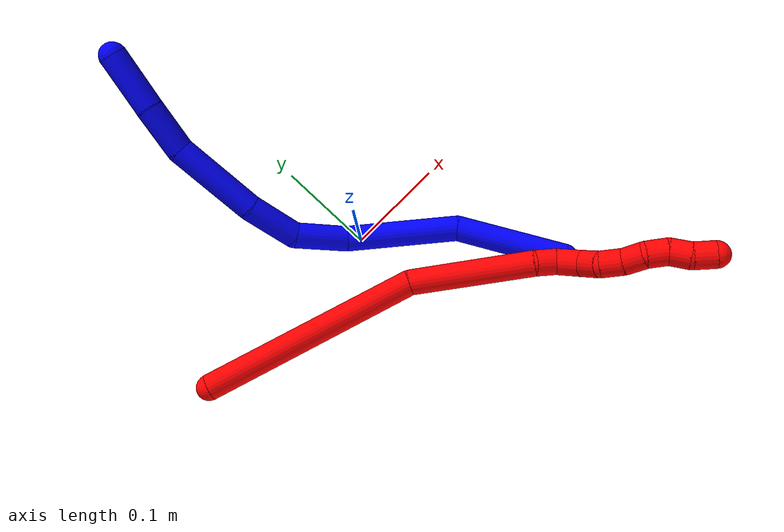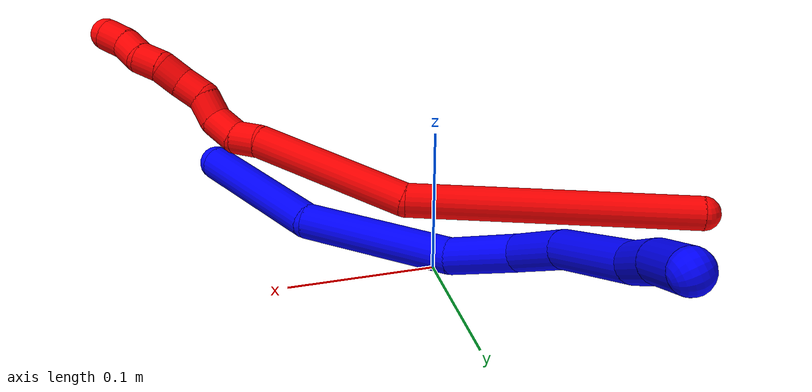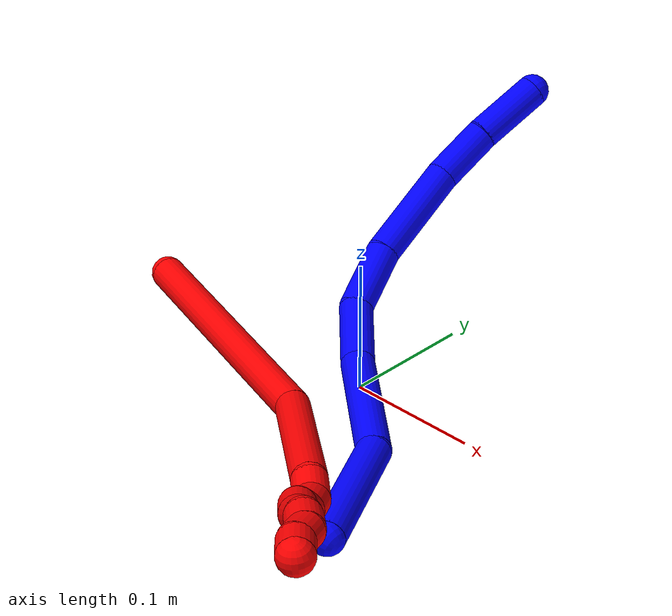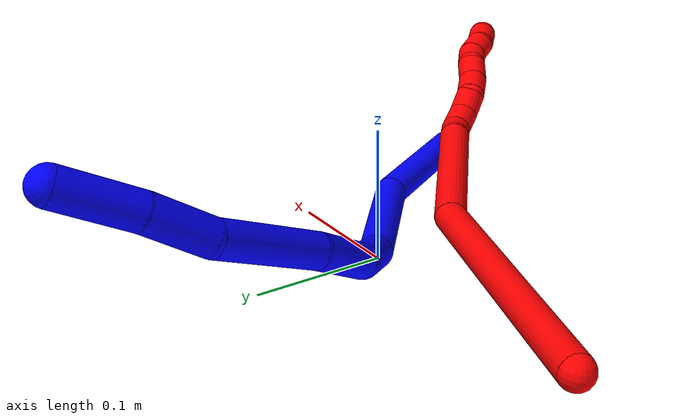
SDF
<sdf version="1.7">
 <world name="default">
  <plugin name="TubeGeneratorPlugin" filename="libtube_generator_plugin.so"/>
  <model name="photoneo_s_sensor">
   <static>1</static>
   <pose>0 0 2 1.57079 1.57079 3.14159</pose>
   <link name="link">
    <inertial><mass>0.1</mass></inertial>
    <sensor name="sensor" type="depth">
     <update_rate>30</update_rate>
     <camera>
      <horizontal_fov>1.22</horizontal_fov>
      <image><width>1920</width><height>1200</height><format>B8G8R8</format></image>
      <clip><near>0.1</near><far>4</far></clip>
      <depth_camera><output>points</output></depth_camera>
     </camera>
     <plugin name="camera_plugin" filename="libgazebo_ros_depth_camera.so">
      <baseline>0.2</baseline>
      <alwaysOn>1</alwaysOn>
      <updateRate>0.0</updateRate>
      <cameraName>camera_ir</cameraName>
      <imageTopicName>/camera/color/image_raw</imageTopicName>
      <cameraInfoTopicName>/camera/color/camera_info</cameraInfoTopicName>
      <depthImageTopicName>/camera/depth/image_raw</depthImageTopicName>
      <depthImageCameraInfoTopicName>/camera/depth/camera_info</depthImageCameraInfoTopicName>
      <pointCloudTopicName>/camera/depth/points</pointCloudTopicName>
      <frameName>fr_optical</frameName>
      <pointCloudCutoff>0.1</pointCloudCutoff>
      <pointCloudCutoffMax>2.0</pointCloudCutoffMax>
      <distortionK1>0</distortionK1>
      <distortionK2>0</distortionK2>
      <distortionK3>0</distortionK3>
      <distortionT1>0</distortionT1>
      <distortionT2>0</distortionT2>
      <CxPrime>0</CxPrime>
      <Cx>0</Cx>
      <Cy>0</Cy>
      <focalLength>0</focalLength>
      <hackBaseline>0</hackBaseline>
     </plugin>
    </sensor>
   </link>
  </model>
  <gravity>0 0 -9.8</gravity>
  <magnetic_field>6e-06 2.3e-05 -4.2e-05</magnetic_field>
  <atmosphere type="adiabatic"/>
  <physics name="default_physics" default="0" type="ode">
   <max_step_size>0.003</max_step_size>
   <real_time_factor>1</real_time_factor>
   <real_time_update_rate>1000</real_time_update_rate>
   <max_contacts>10000</max_contacts>
   <ode>
    <solver>
     <type>quick</type>
     <iters>100</iters>
     <sor>1.3</sor>
     <use_dynamic_moi_rescaling>0</use_dynamic_moi_rescaling>
    </solver>
    <constraints>
     <contact_max_correcting_vel>0</contact_max_correcting_vel>
     <contact_surface_layer>0.001</contact_surface_layer>
     <cfm>0</cfm>
     <erp>0.2</erp>
    </constraints>
   </ode>
  </physics>
  <scene><ambient>0.4 0.4 0.4 1</ambient><background>0.7 0.7 0.7 1</background><shadows>0</shadows></scene>
  <audio><device>default</device></audio>
  <spherical_coordinates>
   <surface_model>EARTH_WGS84</surface_model>
   <latitude_deg>0</latitude_deg>
   <longitude_deg>0</longitude_deg>
   <elevation>0</elevation>
   <heading_deg>0</heading_deg>
  </spherical_coordinates>
  <model name="bin">
   <static>1</static>
   <link name="bottom">
    <collision name="collision-bottom">
     <pose>0 0 -0.01 0 -0 0</pose>
     <geometry><box><size>0.8 0.6 0.02</size></box></geometry>
     <surface>
      <friction><ode><mu>100</mu><mu2>100</mu2></ode></friction>
      <contact><collide_bitmask>65535</collide_bitmask></contact>
     </surface>
    </collision>
   </link>
   <link name="west_wall">
    <collision name="collision-west_wall">
     <pose>-0.41 0 0.1 0 -0 0</pose>
     <geometry><box><size>0.02 0.6 0.2</size></box></geometry>
     <surface>
      <friction><ode><mu>100</mu><mu2>100</mu2></ode></friction>
      <contact><collide_bitmask>65535</collide_bitmask></contact>
     </surface>
    </collision>
   </link>
   <link name="east_wall">
    <collision name="collision-east_wall">
     <pose>0.41 0 0.1 0 -0 0</pose>
     <geometry><box><size>0.02 0.6 0.2</size></box></geometry>
     <surface>
      <friction><ode><mu>100</mu><mu2>100</mu2></ode></friction>
      <contact><collide_bitmask>65535</collide_bitmask></contact>
     </surface>
    </collision>
   </link>
   <link name="south_wall">
    <collision name="collision-south_wall">
     <pose>0 -0.31 0.1 0 -0 0</pose>
     <geometry><box><size>0.8 0.02 0.2</size></box></geometry>
     <surface>
      <friction><ode><mu>100</mu><mu2>100</mu2></ode></friction>
      <contact><collide_bitmask>65535</collide_bitmask></contact>
     </surface>
    </collision>
   </link>
   <link name="north_wall">
    <collision name="collision-north_wall">
     <pose>0 0.31 0.1 0 -0 0</pose>
     <geometry><box><size>0.8 0.02 0.2</size></box></geometry>
     <surface>
      <friction><ode><mu>100</mu><mu2>100</mu2></ode></friction>
      <contact><collide_bitmask>65535</collide_bitmask></contact>
     </surface>
    </collision>
   </link>
  </model>
  <model name="1">
   <static>0</static>
   <link name="1">
    <collision name="collision-cylinder-e_1_1_4">
     <pose>-0.030644 0.039286 0.021238 -1.0752 -0.601388 0.365616</pose>
     <geometry><cylinder><radius>0.0125</radius><length>0.108322</length></cylinder></geometry>
     <surface>
      <friction><ode><mu>1.16</mu><mu2>1.16</mu2><slip1>0</slip1><slip2>0</slip2></ode></friction>
      <contact><ode><kp>1e+06</kp><kd>1</kd><max_vel>0</max_vel><min_depth>0.001</min_depth></ode></contact>
     </surface>
    </collision>
    <visual name="visual-cylinder-e_1_1_4">
     <pose>-0.030644 0.039286 0.021238 -1.0752 -0.601388 0.365616</pose>
     <geometry><cylinder><radius>0.0125</radius><length>0.108322</length></cylinder></geometry>
     <material><ambient>0 0 1 1</ambient></material>
    </visual>
    <collision name="collision-cylinder-e_2_4_5">
     <pose>-0.089569 0.105918 0.08078 -0.620009 -0.541084 0.177218</pose>
     <geometry><cylinder><radius>0.0125</radius><length>0.109816</length></cylinder></geometry>
     <surface>
      <friction><ode><mu>1.16</mu><mu2>1.16</mu2><slip1>0</slip1><slip2>0</slip2></ode></friction>
      <contact><ode><kp>1e+06</kp><kd>1</kd><max_vel>0</max_vel><min_depth>0.001</min_depth></ode></contact>
     </surface>
    </collision>
    <visual name="visual-cylinder-e_2_4_5">
     <pose>-0.089569 0.105918 0.08078 -0.620009 -0.541084 0.177218</pose>
     <geometry><cylinder><radius>0.0125</radius><length>0.109816</length></cylinder></geometry>
     <material><ambient>0 0 1 1</ambient></material>
    </visual>
    <collision name="collision-cylinder-e_3_5_6">
     <pose>-0.123385 0.150465 0.137978 -0.738522 -0.21332 0.082825</pose>
     <geometry><cylinder><radius>0.0125</radius><length>0.052288</length></cylinder></geometry>
     <surface>
      <friction><ode><mu>1.16</mu><mu2>1.16</mu2><slip1>0</slip1><slip2>0</slip2></ode></friction>
      <contact><ode><kp>1e+06</kp><kd>1</kd><max_vel>0</max_vel><min_depth>0.001</min_depth></ode></contact>
     </surface>
    </collision>
    <visual name="visual-cylinder-e_3_5_6">
     <pose>-0.123385 0.150465 0.137978 -0.738522 -0.21332 0.082825</pose>
     <geometry><cylinder><radius>0.0125</radius><length>0.052288</length></cylinder></geometry>
     <material><ambient>0 0 1 1</ambient></material>
    </visual>
    <collision name="collision-cylinder-e_4_6_7">
     <pose>-0.129396 0.190936 0.166211 -1.18916 -0.018995 0.012844</pose>
     <geometry><cylinder><radius>0.0125</radius><length>0.050157</length></cylinder></geometry>
     <surface>
      <friction><ode><mu>1.16</mu><mu2>1.16</mu2><slip1>0</slip1><slip2>0</slip2></ode></friction>
      <contact><ode><kp>1e+06</kp><kd>1</kd><max_vel>0</max_vel><min_depth>0.001</min_depth></ode></contact>
     </surface>
    </collision>
    <visual name="visual-cylinder-e_4_6_7">
     <pose>-0.129396 0.190936 0.166211 -1.18916 -0.018995 0.012844</pose>
     <geometry><cylinder><radius>0.0125</radius><length>0.050157</length></cylinder></geometry>
     <material><ambient>0 0 1 1</ambient></material>
    </visual>
    <collision name="collision-cylinder-e_5_7_8">
     <pose>-0.133382 0.253891 0.183995 -1.36111 -0.086285 0.06987</pose>
     <geometry><cylinder><radius>0.0125</radius><length>0.081449</length></cylinder></geometry>
     <surface>
      <friction><ode><mu>1.16</mu><mu2>1.16</mu2><slip1>0</slip1><slip2>0</slip2></ode></friction>
      <contact><ode><kp>1e+06</kp><kd>1</kd><max_vel>0</max_vel><min_depth>0.001</min_depth></ode></contact>
     </surface>
    </collision>
    <visual name="visual-cylinder-e_5_7_8">
     <pose>-0.133382 0.253891 0.183995 -1.36111 -0.086285 0.06987</pose>
     <geometry><cylinder><radius>0.0125</radius><length>0.081449</length></cylinder></geometry>
     <material><ambient>0 0 1 1</ambient></material>
    </visual>
    <collision name="collision-cylinder-e_6_8_9">
     <pose>-0.133943 0.31572 0.192795 -1.55481 0.132356 -0.130263</pose>
     <geometry><cylinder><radius>0.0125</radius><length>0.044687</length></cylinder></geometry>
     <surface>
      <friction><ode><mu>1.16</mu><mu2>1.16</mu2><slip1>0</slip1><slip2>0</slip2></ode></friction>
      <contact><ode><kp>1e+06</kp><kd>1</kd><max_vel>0</max_vel><min_depth>0.001</min_depth></ode></contact>
     </surface>
    </collision>
    <visual name="visual-cylinder-e_6_8_9">
     <pose>-0.133943 0.31572 0.192795 -1.55481 0.132356 -0.130263</pose>
     <geometry><cylinder><radius>0.0125</radius><length>0.044687</length></cylinder></geometry>
     <material><ambient>0 0 1 1</ambient></material>
    </visual>
    <collision name="collision-cylinder-e_7_9_2">
     <pose>-0.129741 0.364454 0.19206 -1.61174 0.047034 -0.048999</pose>
     <geometry><cylinder><radius>0.0125</radius><length>0.053281</length></cylinder></geometry>
     <surface>
      <friction><ode><mu>1.16</mu><mu2>1.16</mu2><slip1>0</slip1><slip2>0</slip2></ode></friction>
      <contact><ode><kp>1e+06</kp><kd>1</kd><max_vel>0</max_vel><min_depth>0.001</min_depth></ode></contact>
     </surface>
    </collision>
    <visual name="visual-cylinder-e_7_9_2">
     <pose>-0.129741 0.364454 0.19206 -1.61174 0.047034 -0.048999</pose>
     <geometry><cylinder><radius>0.0125</radius><length>0.053281</length></cylinder></geometry>
     <material><ambient>0 0 1 1</ambient></material>
    </visual>
    <collision name="collision-sphere-2">
     <pose>-0.128489 0.391043 0.19097 0 -0 0</pose>
     <geometry><sphere><radius>0.0125</radius></sphere></geometry>
     <surface>
      <friction><ode><mu>1.16</mu><mu2>1.16</mu2><slip1>0</slip1><slip2>0</slip2></ode></friction>
      <contact><ode><kp>1e+06</kp><kd>1</kd><max_vel>0</max_vel><min_depth>0.001</min_depth></ode></contact>
     </surface>
    </collision>
    <visual name="visual-sphere-2">
     <pose>-0.128489 0.391043 0.19097 0 -0 0</pose>
     <geometry><sphere><radius>0.0125</radius></sphere></geometry>
     <material><ambient>0 0 1 1</ambient></material>
    </visual>
    <collision name="collision-sphere-9">
     <pose>-0.130994 0.337865 0.193149 0 -0 0</pose>
     <geometry><sphere><radius>0.0125</radius></sphere></geometry>
     <surface>
      <friction><ode><mu>1.16</mu><mu2>1.16</mu2><slip1>0</slip1><slip2>0</slip2></ode></friction>
      <contact><ode><kp>1e+06</kp><kd>1</kd><max_vel>0</max_vel><min_depth>0.001</min_depth></ode></contact>
     </surface>
    </collision>
    <visual name="visual-sphere-9">
     <pose>-0.130994 0.337865 0.193149 0 -0 0</pose>
     <geometry><sphere><radius>0.0125</radius></sphere></geometry>
     <material><ambient>0 0 1 1</ambient></material>
    </visual>
    <collision name="collision-sphere-4">
     <pose>-0.061287 0.078571 0.042475 0 -0 0</pose>
     <geometry><sphere><radius>0.0125</radius></sphere></geometry>
     <surface>
      <friction><ode><mu>1.16</mu><mu2>1.16</mu2><slip1>0</slip1><slip2>0</slip2></ode></friction>
      <contact><ode><kp>1e+06</kp><kd>1</kd><max_vel>0</max_vel><min_depth>0.001</min_depth></ode></contact>
     </surface>
    </collision>
    <visual name="visual-sphere-4">
     <pose>-0.061287 0.078571 0.042475 0 -0 0</pose>
     <geometry><sphere><radius>0.0125</radius></sphere></geometry>
     <material><ambient>0 0 1 1</ambient></material>
    </visual>
    <collision name="collision-sphere-1">
     <geometry><sphere><radius>0.0125</radius></sphere></geometry>
     <surface>
      <friction><ode><mu>1.16</mu><mu2>1.16</mu2><slip1>0</slip1><slip2>0</slip2></ode></friction>
      <contact><ode><kp>1e+06</kp><kd>1</kd><max_vel>0</max_vel><min_depth>0.001</min_depth></ode></contact>
     </surface>
    </collision>
    <visual name="visual-sphere-1">
     <geometry><sphere><radius>0.0125</radius></sphere></geometry>
     <material><ambient>0 0 1 1</ambient></material>
    </visual>
    <collision name="collision-sphere-8">
     <pose>-0.136891 0.293575 0.192441 0 -0 0</pose>
     <geometry><sphere><radius>0.0125</radius></sphere></geometry>
     <surface>
      <friction><ode><mu>1.16</mu><mu2>1.16</mu2><slip1>0</slip1><slip2>0</slip2></ode></friction>
      <contact><ode><kp>1e+06</kp><kd>1</kd><max_vel>0</max_vel><min_depth>0.001</min_depth></ode></contact>
     </surface>
    </collision>
    <visual name="visual-sphere-8">
     <pose>-0.136891 0.293575 0.192441 0 -0 0</pose>
     <geometry><sphere><radius>0.0125</radius></sphere></geometry>
     <material><ambient>0 0 1 1</ambient></material>
    </visual>
    <collision name="collision-sphere-5">
     <pose>-0.11785 0.133264 0.119084 0 -0 0</pose>
     <geometry><sphere><radius>0.0125</radius></sphere></geometry>
     <surface>
      <friction><ode><mu>1.16</mu><mu2>1.16</mu2><slip1>0</slip1><slip2>0</slip2></ode></friction>
      <contact><ode><kp>1e+06</kp><kd>1</kd><max_vel>0</max_vel><min_depth>0.001</min_depth></ode></contact>
     </surface>
    </collision>
    <visual name="visual-sphere-5">
     <pose>-0.11785 0.133264 0.119084 0 -0 0</pose>
     <geometry><sphere><radius>0.0125</radius></sphere></geometry>
     <material><ambient>0 0 1 1</ambient></material>
    </visual>
    <collision name="collision-sphere-6">
     <pose>-0.128919 0.167666 0.156873 0 -0 0</pose>
     <geometry><sphere><radius>0.0125</radius></sphere></geometry>
     <surface>
      <friction><ode><mu>1.16</mu><mu2>1.16</mu2><slip1>0</slip1><slip2>0</slip2></ode></friction>
      <contact><ode><kp>1e+06</kp><kd>1</kd><max_vel>0</max_vel><min_depth>0.001</min_depth></ode></contact>
     </surface>
    </collision>
    <visual name="visual-sphere-6">
     <pose>-0.128919 0.167666 0.156873 0 -0 0</pose>
     <geometry><sphere><radius>0.0125</radius></sphere></geometry>
     <material><ambient>0 0 1 1</ambient></material>
    </visual>
    <collision name="collision-sphere-7">
     <pose>-0.129872 0.214207 0.17555 0 -0 0</pose>
     <geometry><sphere><radius>0.0125</radius></sphere></geometry>
     <surface>
      <friction><ode><mu>1.16</mu><mu2>1.16</mu2><slip1>0</slip1><slip2>0</slip2></ode></friction>
      <contact><ode><kp>1e+06</kp><kd>1</kd><max_vel>0</max_vel><min_depth>0.001</min_depth></ode></contact>
     </surface>
    </collision>
    <visual name="visual-sphere-7">
     <pose>-0.129872 0.214207 0.17555 0 -0 0</pose>
     <geometry><sphere><radius>0.0125</radius></sphere></geometry>
     <material><ambient>0 0 1 1</ambient></material>
    </visual>
    <inertial>
     <pose>-0.099718 0.175075 0.121115 0 -0 0</pose>
     <mass>0.5</mass>
     <inertia>
      <ixx>0.000322</ixx>
      <ixy>0</ixy>
      <ixz>0</ixz>
      <iyy>0.000275</iyy>
      <iyz>0</iyz>
      <izz>-8.7e-05</izz>
     </inertia>
    </inertial>
   </link>
   <pose>0.123026 -0.159444 0.018478 0.905747 -1.01697 -0.954678</pose>
  </model>
  <model name="2">
   <static>0</static>
   <link name="2">
    <collision name="collision-cylinder-e_1_1_4">
     <pose>0.101867 -0.030862 0.003445 1.45964 1.27489 1.17026</pose>
     <geometry><cylinder><radius>0.0125</radius><length>0.21299</length></cylinder></geometry>
     <surface>
      <friction><ode><mu>1.16</mu><mu2>1.16</mu2><slip1>0</slip1><slip2>0</slip2></ode></friction>
      <contact><ode><kp>1e+06</kp><kd>1</kd><max_vel>0</max_vel><min_depth>0.001</min_depth></ode></contact>
     </surface>
    </collision>
    <visual name="visual-cylinder-e_1_1_4">
     <pose>0.101867 -0.030862 0.003445 1.45964 1.27489 1.17026</pose>
     <geometry><cylinder><radius>0.0125</radius><length>0.21299</length></cylinder></geometry>
     <material><ambient>1 0 0 1</ambient></material>
    </visual>
    <collision name="collision-cylinder-e_2_4_5">
     <pose>0.250637 -0.097178 0.021591 1.17771 0.885002 0.613007</pose>
     <geometry><cylinder><radius>0.0125</radius><length>0.121211</length></cylinder></geometry>
     <surface>
      <friction><ode><mu>1.16</mu><mu2>1.16</mu2><slip1>0</slip1><slip2>0</slip2></ode></friction>
      <contact><ode><kp>1e+06</kp><kd>1</kd><max_vel>0</max_vel><min_depth>0.001</min_depth></ode></contact>
     </surface>
    </collision>
    <visual name="visual-cylinder-e_2_4_5">
     <pose>0.250637 -0.097178 0.021591 1.17771 0.885002 0.613007</pose>
     <geometry><cylinder><radius>0.0125</radius><length>0.121211</length></cylinder></geometry>
     <material><ambient>1 0 0 1</ambient></material>
    </visual>
    <collision name="collision-cylinder-e_3_5_6">
     <pose>0.305462 -0.139269 0.036391 1.55601 0.873313 0.862034</pose>
     <geometry><cylinder><radius>0.0125</radius><length>0.02067</length></cylinder></geometry>
     <surface>
      <friction><ode><mu>1.16</mu><mu2>1.16</mu2><slip1>0</slip1><slip2>0</slip2></ode></friction>
      <contact><ode><kp>1e+06</kp><kd>1</kd><max_vel>0</max_vel><min_depth>0.001</min_depth></ode></contact>
     </surface>
    </collision>
    <visual name="visual-cylinder-e_3_5_6">
     <pose>0.305462 -0.139269 0.036391 1.55601 0.873313 0.862034</pose>
     <geometry><cylinder><radius>0.0125</radius><length>0.02067</length></cylinder></geometry>
     <material><ambient>1 0 0 1</ambient></material>
    </visual>
    <collision name="collision-cylinder-e_4_6_7">
     <pose>0.319921 -0.154415 0.041233 1.06212 0.591096 0.353911</pose>
     <geometry><cylinder><radius>0.0125</radius><length>0.023466</length></cylinder></geometry>
     <surface>
      <friction><ode><mu>1.16</mu><mu2>1.16</mu2><slip1>0</slip1><slip2>0</slip2></ode></friction>
      <contact><ode><kp>1e+06</kp><kd>1</kd><max_vel>0</max_vel><min_depth>0.001</min_depth></ode></contact>
     </surface>
    </collision>
    <visual name="visual-cylinder-e_4_6_7">
     <pose>0.319921 -0.154415 0.041233 1.06212 0.591096 0.353911</pose>
     <geometry><cylinder><radius>0.0125</radius><length>0.023466</length></cylinder></geometry>
     <material><ambient>1 0 0 1</ambient></material>
    </visual>
    <collision name="collision-cylinder-e_5_7_8">
     <pose>0.329966 -0.168583 0.053706 0.632052 0.350964 0.115823</pose>
     <geometry><cylinder><radius>0.0125</radius><length>0.0204</length></cylinder></geometry>
     <surface>
      <friction><ode><mu>1.16</mu><mu2>1.16</mu2><slip1>0</slip1><slip2>0</slip2></ode></friction>
      <contact><ode><kp>1e+06</kp><kd>1</kd><max_vel>0</max_vel><min_depth>0.001</min_depth></ode></contact>
     </surface>
    </collision>
    <visual name="visual-cylinder-e_5_7_8">
     <pose>0.329966 -0.168583 0.053706 0.632052 0.350964 0.115823</pose>
     <geometry><cylinder><radius>0.0125</radius><length>0.0204</length></cylinder></geometry>
     <material><ambient>1 0 0 1</ambient></material>
    </visual>
    <collision name="collision-cylinder-e_6_8_9">
     <pose>0.340719 -0.180422 0.065996 0.934886 0.756163 0.39572</pose>
     <geometry><cylinder><radius>0.0125</radius><length>0.02112</length></cylinder></geometry>
     <surface>
      <friction><ode><mu>1.16</mu><mu2>1.16</mu2><slip1>0</slip1><slip2>0</slip2></ode></friction>
      <contact><ode><kp>1e+06</kp><kd>1</kd><max_vel>0</max_vel><min_depth>0.001</min_depth></ode></contact>
     </surface>
    </collision>
    <visual name="visual-cylinder-e_6_8_9">
     <pose>0.340719 -0.180422 0.065996 0.934886 0.756163 0.39572</pose>
     <geometry><cylinder><radius>0.0125</radius><length>0.02112</length></cylinder></geometry>
     <material><ambient>1 0 0 1</ambient></material>
    </visual>
    <collision name="collision-cylinder-e_7_9_10">
     <pose>0.355171 -0.190468 0.076333 0.589853 0.803604 0.256749</pose>
     <geometry><cylinder><radius>0.0125</radius><length>0.020022</length></cylinder></geometry>
     <surface>
      <friction><ode><mu>1.16</mu><mu2>1.16</mu2><slip1>0</slip1><slip2>0</slip2></ode></friction>
      <contact><ode><kp>1e+06</kp><kd>1</kd><max_vel>0</max_vel><min_depth>0.001</min_depth></ode></contact>
     </surface>
    </collision>
    <visual name="visual-cylinder-e_7_9_10">
     <pose>0.355171 -0.190468 0.076333 0.589853 0.803604 0.256749</pose>
     <geometry><cylinder><radius>0.0125</radius><length>0.020022</length></cylinder></geometry>
     <material><ambient>1 0 0 1</ambient></material>
    </visual>
    <collision name="collision-cylinder-e_8_10_11">
     <pose>0.369998 -0.200242 0.084775 1.14685 0.865898 0.580141</pose>
     <geometry><cylinder><radius>0.0125</radius><length>0.020011</length></cylinder></geometry>
     <surface>
      <friction><ode><mu>1.16</mu><mu2>1.16</mu2><slip1>0</slip1><slip2>0</slip2></ode></friction>
      <contact><ode><kp>1e+06</kp><kd>1</kd><max_vel>0</max_vel><min_depth>0.001</min_depth></ode></contact>
     </surface>
    </collision>
    <visual name="visual-cylinder-e_8_10_11">
     <pose>0.369998 -0.200242 0.084775 1.14685 0.865898 0.580141</pose>
     <geometry><cylinder><radius>0.0125</radius><length>0.020011</length></cylinder></geometry>
     <material><ambient>1 0 0 1</ambient></material>
    </visual>
    <collision name="collision-cylinder-e_9_11_12">
     <pose>0.382253 -0.21418 0.091196 1.13339 0.481751 0.310104</pose>
     <geometry><cylinder><radius>0.0125</radius><length>0.020005</length></cylinder></geometry>
     <surface>
      <friction><ode><mu>1.16</mu><mu2>1.16</mu2><slip1>0</slip1><slip2>0</slip2></ode></friction>
      <contact><ode><kp>1e+06</kp><kd>1</kd><max_vel>0</max_vel><min_depth>0.001</min_depth></ode></contact>
     </surface>
    </collision>
    <visual name="visual-cylinder-e_9_11_12">
     <pose>0.382253 -0.21418 0.091196 1.13339 0.481751 0.310104</pose>
     <geometry><cylinder><radius>0.0125</radius><length>0.020005</length></cylinder></geometry>
     <material><ambient>1 0 0 1</ambient></material>
    </visual>
    <collision name="collision-cylinder-e_10_12_2">
     <pose>0.393996 -0.228777 0.097674 1.17782 0.785294 0.539787</pose>
     <geometry><cylinder><radius>0.0125</radius><length>0.020107</length></cylinder></geometry>
     <surface>
      <friction><ode><mu>1.16</mu><mu2>1.16</mu2><slip1>0</slip1><slip2>0</slip2></ode></friction>
      <contact><ode><kp>1e+06</kp><kd>1</kd><max_vel>0</max_vel><min_depth>0.001</min_depth></ode></contact>
     </surface>
    </collision>
    <visual name="visual-cylinder-e_10_12_2">
     <pose>0.393996 -0.228777 0.097674 1.17782 0.785294 0.539787</pose>
     <geometry><cylinder><radius>0.0125</radius><length>0.020107</length></cylinder></geometry>
     <material><ambient>1 0 0 1</ambient></material>
    </visual>
    <collision name="collision-sphere-2">
     <pose>0.401104 -0.235345 0.100396 0 -0 0</pose>
     <geometry><sphere><radius>0.0125</radius></sphere></geometry>
     <surface>
      <friction><ode><mu>1.16</mu><mu2>1.16</mu2><slip1>0</slip1><slip2>0</slip2></ode></friction>
      <contact><ode><kp>1e+06</kp><kd>1</kd><max_vel>0</max_vel><min_depth>0.001</min_depth></ode></contact>
     </surface>
    </collision>
    <visual name="visual-sphere-2">
     <pose>0.401104 -0.235345 0.100396 0 -0 0</pose>
     <geometry><sphere><radius>0.0125</radius></sphere></geometry>
     <material><ambient>1 0 0 1</ambient></material>
    </visual>
    <collision name="collision-sphere-12">
     <pose>0.386888 -0.22221 0.094951 0 -0 0</pose>
     <geometry><sphere><radius>0.0125</radius></sphere></geometry>
     <surface>
      <friction><ode><mu>1.16</mu><mu2>1.16</mu2><slip1>0</slip1><slip2>0</slip2></ode></friction>
      <contact><ode><kp>1e+06</kp><kd>1</kd><max_vel>0</max_vel><min_depth>0.001</min_depth></ode></contact>
     </surface>
    </collision>
    <visual name="visual-sphere-12">
     <pose>0.386888 -0.22221 0.094951 0 -0 0</pose>
     <geometry><sphere><radius>0.0125</radius></sphere></geometry>
     <material><ambient>1 0 0 1</ambient></material>
    </visual>
    <collision name="collision-sphere-11">
     <pose>0.377619 -0.206151 0.087442 0 -0 0</pose>
     <geometry><sphere><radius>0.0125</radius></sphere></geometry>
     <surface>
      <friction><ode><mu>1.16</mu><mu2>1.16</mu2><slip1>0</slip1><slip2>0</slip2></ode></friction>
      <contact><ode><kp>1e+06</kp><kd>1</kd><max_vel>0</max_vel><min_depth>0.001</min_depth></ode></contact>
     </surface>
    </collision>
    <visual name="visual-sphere-11">
     <pose>0.377619 -0.206151 0.087442 0 -0 0</pose>
     <geometry><sphere><radius>0.0125</radius></sphere></geometry>
     <material><ambient>1 0 0 1</ambient></material>
    </visual>
    <collision name="collision-sphere-10">
     <pose>0.362377 -0.194333 0.082108 0 -0 0</pose>
     <geometry><sphere><radius>0.0125</radius></sphere></geometry>
     <surface>
      <friction><ode><mu>1.16</mu><mu2>1.16</mu2><slip1>0</slip1><slip2>0</slip2></ode></friction>
      <contact><ode><kp>1e+06</kp><kd>1</kd><max_vel>0</max_vel><min_depth>0.001</min_depth></ode></contact>
     </surface>
    </collision>
    <visual name="visual-sphere-10">
     <pose>0.362377 -0.194333 0.082108 0 -0 0</pose>
     <geometry><sphere><radius>0.0125</radius></sphere></geometry>
     <material><ambient>1 0 0 1</ambient></material>
    </visual>
    <collision name="collision-sphere-9">
     <pose>0.347964 -0.186602 0.070559 0 -0 0</pose>
     <geometry><sphere><radius>0.0125</radius></sphere></geometry>
     <surface>
      <friction><ode><mu>1.16</mu><mu2>1.16</mu2><slip1>0</slip1><slip2>0</slip2></ode></friction>
      <contact><ode><kp>1e+06</kp><kd>1</kd><max_vel>0</max_vel><min_depth>0.001</min_depth></ode></contact>
     </surface>
    </collision>
    <visual name="visual-sphere-9">
     <pose>0.347964 -0.186602 0.070559 0 -0 0</pose>
     <geometry><sphere><radius>0.0125</radius></sphere></geometry>
     <material><ambient>1 0 0 1</ambient></material>
    </visual>
    <collision name="collision-sphere-4">
     <pose>0.203733 -0.061725 0.006889 0 -0 0</pose>
     <geometry><sphere><radius>0.0125</radius></sphere></geometry>
     <surface>
      <friction><ode><mu>1.16</mu><mu2>1.16</mu2><slip1>0</slip1><slip2>0</slip2></ode></friction>
      <contact><ode><kp>1e+06</kp><kd>1</kd><max_vel>0</max_vel><min_depth>0.001</min_depth></ode></contact>
     </surface>
    </collision>
    <visual name="visual-sphere-4">
     <pose>0.203733 -0.061725 0.006889 0 -0 0</pose>
     <geometry><sphere><radius>0.0125</radius></sphere></geometry>
     <material><ambient>1 0 0 1</ambient></material>
    </visual>
    <collision name="collision-sphere-1">
     <geometry><sphere><radius>0.0125</radius></sphere></geometry>
     <surface>
      <friction><ode><mu>1.16</mu><mu2>1.16</mu2><slip1>0</slip1><slip2>0</slip2></ode></friction>
      <contact><ode><kp>1e+06</kp><kd>1</kd><max_vel>0</max_vel><min_depth>0.001</min_depth></ode></contact>
     </surface>
    </collision>
    <visual name="visual-sphere-1">
     <geometry><sphere><radius>0.0125</radius></sphere></geometry>
     <material><ambient>1 0 0 1</ambient></material>
    </visual>
    <collision name="collision-sphere-8">
     <pose>0.333473 -0.174242 0.061434 0 -0 0</pose>
     <geometry><sphere><radius>0.0125</radius></sphere></geometry>
     <surface>
      <friction><ode><mu>1.16</mu><mu2>1.16</mu2><slip1>0</slip1><slip2>0</slip2></ode></friction>
      <contact><ode><kp>1e+06</kp><kd>1</kd><max_vel>0</max_vel><min_depth>0.001</min_depth></ode></contact>
     </surface>
    </collision>
    <visual name="visual-sphere-8">
     <pose>0.333473 -0.174242 0.061434 0 -0 0</pose>
     <geometry><sphere><radius>0.0125</radius></sphere></geometry>
     <material><ambient>1 0 0 1</ambient></material>
    </visual>
    <collision name="collision-sphere-5">
     <pose>0.29754 -0.132632 0.036292 0 -0 0</pose>
     <geometry><sphere><radius>0.0125</radius></sphere></geometry>
     <surface>
      <friction><ode><mu>1.16</mu><mu2>1.16</mu2><slip1>0</slip1><slip2>0</slip2></ode></friction>
      <contact><ode><kp>1e+06</kp><kd>1</kd><max_vel>0</max_vel><min_depth>0.001</min_depth></ode></contact>
     </surface>
    </collision>
    <visual name="visual-sphere-5">
     <pose>0.29754 -0.132632 0.036292 0 -0 0</pose>
     <geometry><sphere><radius>0.0125</radius></sphere></geometry>
     <material><ambient>1 0 0 1</ambient></material>
    </visual>
    <collision name="collision-sphere-6">
     <pose>0.313383 -0.145906 0.036489 0 -0 0</pose>
     <geometry><sphere><radius>0.0125</radius></sphere></geometry>
     <surface>
      <friction><ode><mu>1.16</mu><mu2>1.16</mu2><slip1>0</slip1><slip2>0</slip2></ode></friction>
      <contact><ode><kp>1e+06</kp><kd>1</kd><max_vel>0</max_vel><min_depth>0.001</min_depth></ode></contact>
     </surface>
    </collision>
    <visual name="visual-sphere-6">
     <pose>0.313383 -0.145906 0.036489 0 -0 0</pose>
     <geometry><sphere><radius>0.0125</radius></sphere></geometry>
     <material><ambient>1 0 0 1</ambient></material>
    </visual>
    <collision name="collision-sphere-7">
     <pose>0.32646 -0.162924 0.045978 0 -0 0</pose>
     <geometry><sphere><radius>0.0125</radius></sphere></geometry>
     <surface>
      <friction><ode><mu>1.16</mu><mu2>1.16</mu2><slip1>0</slip1><slip2>0</slip2></ode></friction>
      <contact><ode><kp>1e+06</kp><kd>1</kd><max_vel>0</max_vel><min_depth>0.001</min_depth></ode></contact>
     </surface>
    </collision>
    <visual name="visual-sphere-7">
     <pose>0.32646 -0.162924 0.045978 0 -0 0</pose>
     <geometry><sphere><radius>0.0125</radius></sphere></geometry>
     <material><ambient>1 0 0 1</ambient></material>
    </visual>
    <inertial>
     <pose>0.219817 -0.097618 0.029146 0 -0 0</pose>
     <mass>0.5</mass>
     <inertia>
      <ixx>0.00049</ixx>
      <ixy>0</ixy>
      <ixz>0</ixz>
      <iyy>0.001127</iyy>
      <iyz>0</iyz>
      <izz>-0.000564</izz>
     </inertia>
    </inertial>
   </link>
   <pose>-0.201881 -0.000883 0.012093 0.116235 -0.023566 -0.023659</pose>
  </model>
 </world>
</sdf>
